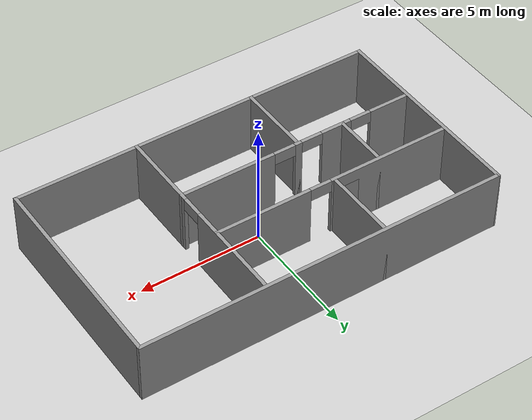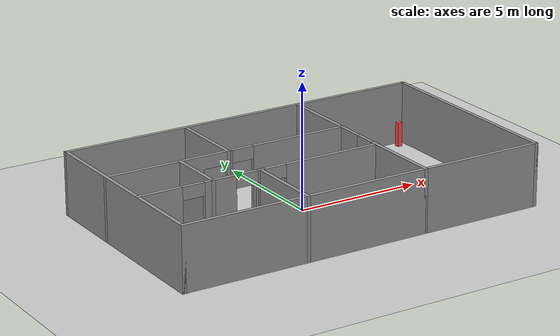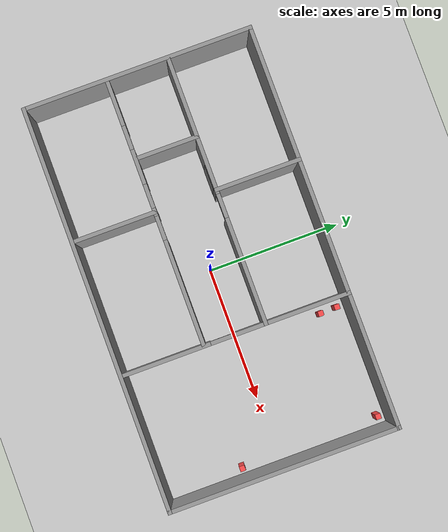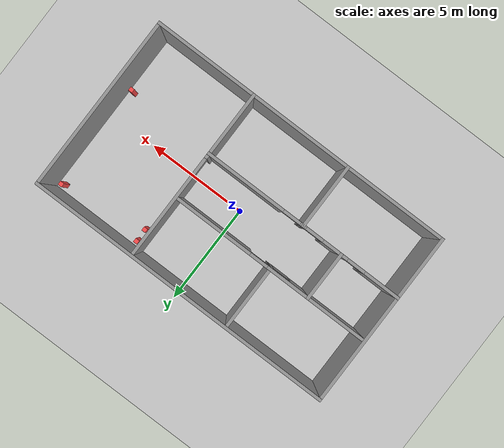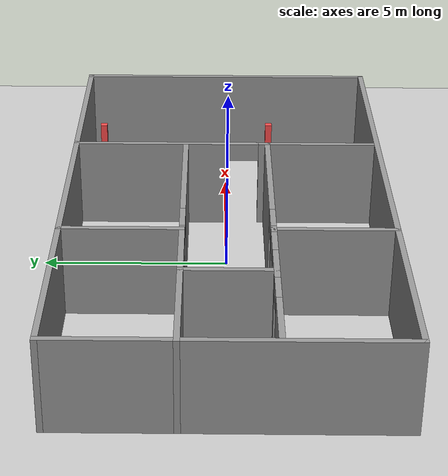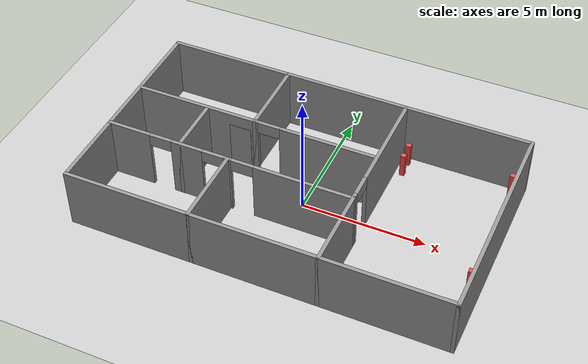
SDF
<sdf version="1.7">
 <world name="default">
  <plugin name="hello" filename="libhello.so"/>
  <light name="sun" type="directional">
   <pose>0 0 10 0 -0 0</pose>
   <diffuse>0.8 0.8 0.8 1</diffuse>
   <specular>0.2 0.2 0.2 1</specular>
   <attenuation>
    <range>1000</range>
    <constant>0.9</constant>
    <linear>0.01</linear>
    <quadratic>0.001</quadratic>
   </attenuation>
   <direction>-0.5 0.1 -0.9</direction>
   <spot><inner_angle>0</inner_angle><outer_angle>0</outer_angle><falloff>0</falloff></spot>
  </light>
  <model name="ground_plane">
   <static>1</static>
   <link name="link">
    <collision name="collision">
     <geometry><plane><normal>0 0 1</normal><size>100 100</size></plane></geometry>
     <surface><friction><ode><mu>100</mu><mu2>50</mu2></ode></friction></surface>
    </collision>
    <visual name="visual">
     <cast_shadows>0</cast_shadows>
     <geometry><plane><normal>0 0 1</normal><size>100 100</size></plane></geometry>
     <material>
      <script><uri>file://media/materials/scripts/gazebo.material</uri><name>Gazebo/Grey</name></script>
     </material>
    </visual>
   </link>
  </model>
  <gravity>0 0 -9.8</gravity>
  <magnetic_field>6e-06 2.3e-05 -4.2e-05</magnetic_field>
  <atmosphere type="adiabatic"/>
  <physics name="default_physics" default="0" type="ode">
   <max_step_size>0.001</max_step_size>
   <real_time_factor>1</real_time_factor>
   <real_time_update_rate>1000</real_time_update_rate>
  </physics>
  <scene><ambient>0.4 0.4 0.4 1</ambient><background>0.7 0.7 0.7 1</background><shadows>1</shadows></scene>
  <spherical_coordinates>
   <surface_model>EARTH_WGS84</surface_model>
   <latitude_deg>0</latitude_deg>
   <longitude_deg>0</longitude_deg>
   <elevation>0</elevation>
   <heading_deg>0</heading_deg>
  </spherical_coordinates>
  <model name="myworld">
   <link name="Door_0">
    <collision name="Door_0_Collision">
     <geometry><box><size>0.9 0.17 2</size></box></geometry>
     <pose>0 0 1 0 -0 0</pose>
    </collision>
    <visual name="Door_0_Visual">
     <pose>0 0 1 0 -0 0</pose>
     <geometry><box><size>0.9 0.17 2</size></box></geometry>
     <material>
      <script><uri>file://media/materials/scripts/gazebo.material</uri><name>Gazebo/Grey</name></script>
     </material>
    </visual>
    <pose>-3.1 1.15 0 0 -0 0</pose>
   </link>
   <link name="Wall_0">
    <collision name="Wall_0_Collision">
     <geometry><box><size>15.15 0.15 2.5</size></box></geometry>
     <pose>0 0 1.25 0 -0 0</pose>
    </collision>
    <visual name="Wall_0_Visual">
     <pose>0 0 1.25 0 -0 0</pose>
     <geometry><box><size>15.15 0.15 2.5</size></box></geometry>
     <material>
      <script><uri>file://media/materials/scripts/gazebo.material</uri><name>Gazebo/Grey</name></script>
      <ambient>1 1 1 1</ambient>
     </material>
     <meta><layer>0</layer></meta>
    </visual>
    <pose>0 4.25 0 0 -0 0</pose>
   </link>
   <link name="Wall_12">
    <pose>-2.5 -1.15 0 0 -0 0</pose>
    <visual name="Wall_12_Visual_0">
     <pose>-4.1625 0 1.25 0 -0 0</pose>
     <geometry><box><size>1.825 0.15 2.5</size></box></geometry>
     <material>
      <script><uri>file://media/materials/scripts/gazebo.material</uri><name>Gazebo/Grey</name></script>
      <ambient>1 1 1 1</ambient>
     </material>
     <meta><layer>0</layer></meta>
    </visual>
    <collision name="Wall_12_Collision_0">
     <geometry><box><size>1.825 0.15 2.5</size></box></geometry>
     <pose>-4.1625 0 1.25 0 -0 0</pose>
    </collision>
    <visual name="Wall_12_Visual_1">
     <pose>-1.7 0 1.25 0 -0 0</pose>
     <geometry><box><size>1.3 0.15 2.5</size></box></geometry>
     <material>
      <script><uri>file://media/materials/scripts/gazebo.material</uri><name>Gazebo/Grey</name></script>
      <ambient>1 1 1 1</ambient>
     </material>
     <meta><layer>0</layer></meta>
    </visual>
    <collision name="Wall_12_Collision_1">
     <geometry><box><size>1.3 0.15 2.5</size></box></geometry>
     <pose>-1.7 0 1.25 0 -0 0</pose>
    </collision>
    <visual name="Wall_12_Visual_2">
     <pose>0 0 1.25 0 -0 0</pose>
     <geometry><box><size>0.3 0.15 2.5</size></box></geometry>
     <material>
      <script><uri>file://media/materials/scripts/gazebo.material</uri><name>Gazebo/Grey</name></script>
      <ambient>1 1 1 1</ambient>
     </material>
     <meta><layer>0</layer></meta>
    </visual>
    <collision name="Wall_12_Collision_2">
     <geometry><box><size>0.3 0.15 2.5</size></box></geometry>
     <pose>0 0 1.25 0 -0 0</pose>
    </collision>
    <visual name="Wall_12_Visual_3">
     <pose>3.0625 0 1.25 0 -0 0</pose>
     <geometry><box><size>4.025 0.15 2.5</size></box></geometry>
     <material>
      <script><uri>file://media/materials/scripts/gazebo.material</uri><name>Gazebo/Grey</name></script>
      <ambient>1 1 1 1</ambient>
     </material>
     <meta><layer>0</layer></meta>
    </visual>
    <collision name="Wall_12_Collision_3">
     <geometry><box><size>4.025 0.15 2.5</size></box></geometry>
     <pose>3.0625 0 1.25 0 -0 0</pose>
    </collision>
    <visual name="Wall_12_Visual_4">
     <pose>-2.8 0 2.25 0 -0 0</pose>
     <geometry><box><size>0.9 0.15 0.5</size></box></geometry>
     <material>
      <script><uri>file://media/materials/scripts/gazebo.material</uri><name>Gazebo/Grey</name></script>
      <ambient>1 1 1 1</ambient>
     </material>
     <meta><layer>0</layer></meta>
    </visual>
    <collision name="Wall_12_Collision_4">
     <geometry><box><size>0.9 0.15 0.5</size></box></geometry>
     <pose>-2.8 0 2.25 0 -0 0</pose>
    </collision>
    <visual name="Wall_12_Visual_5">
     <pose>-0.6 0 2.25 0 -0 0</pose>
     <geometry><box><size>0.9 0.15 0.5</size></box></geometry>
     <material>
      <script><uri>file://media/materials/scripts/gazebo.material</uri><name>Gazebo/Grey</name></script>
      <ambient>1 1 1 1</ambient>
     </material>
     <meta><layer>0</layer></meta>
    </visual>
    <collision name="Wall_12_Collision_5">
     <geometry><box><size>0.9 0.15 0.5</size></box></geometry>
     <pose>-0.6 0 2.25 0 -0 0</pose>
    </collision>
    <visual name="Wall_12_Visual_6">
     <pose>0.6 0 2.25 0 -0 0</pose>
     <geometry><box><size>0.9 0.15 0.5</size></box></geometry>
     <material>
      <script><uri>file://media/materials/scripts/gazebo.material</uri><name>Gazebo/Grey</name></script>
      <ambient>1 1 1 1</ambient>
     </material>
     <meta><layer>0</layer></meta>
    </visual>
    <collision name="Wall_12_Collision_6">
     <geometry><box><size>0.9 0.15 0.5</size></box></geometry>
     <pose>0.6 0 2.25 0 -0 0</pose>
    </collision>
   </link>
   <link name="Wall_17">
    <pose>2.5 0 0 0 0 -1.5708</pose>
    <visual name="Wall_17_Visual_0">
     <pose>-2.1631 0 1.25 0 -0 0</pose>
     <geometry><box><size>4.3238 0.15 2.5</size></box></geometry>
     <material>
      <script><uri>file://media/materials/scripts/gazebo.material</uri><name>Gazebo/Grey</name></script>
      <ambient>1 1 1 1</ambient>
     </material>
     <meta><layer>0</layer></meta>
    </visual>
    <collision name="Wall_17_Collision_0">
     <geometry><box><size>4.3238 0.15 2.5</size></box></geometry>
     <pose>-2.1631 0 1.25 0 -0 0</pose>
    </collision>
    <visual name="Wall_17_Visual_1">
     <pose>2.6119 0 1.25 0 -0 0</pose>
     <geometry><box><size>3.4262 0.15 2.5</size></box></geometry>
     <material>
      <script><uri>file://media/materials/scripts/gazebo.material</uri><name>Gazebo/Grey</name></script>
      <ambient>1 1 1 1</ambient>
     </material>
     <meta><layer>0</layer></meta>
    </visual>
    <collision name="Wall_17_Collision_1">
     <geometry><box><size>3.4262 0.15 2.5</size></box></geometry>
     <pose>2.6119 0 1.25 0 -0 0</pose>
    </collision>
    <visual name="Wall_17_Visual_2">
     <pose>0.448796 0 2.25 0 -0 0</pose>
     <geometry><box><size>0.9 0.15 0.5</size></box></geometry>
     <material>
      <script><uri>file://media/materials/scripts/gazebo.material</uri><name>Gazebo/Grey</name></script>
      <ambient>1 1 1 1</ambient>
     </material>
     <meta><layer>0</layer></meta>
    </visual>
    <collision name="Wall_17_Collision_2">
     <geometry><box><size>0.9 0.15 0.5</size></box></geometry>
     <pose>0.448796 0 2.25 0 -0 0</pose>
    </collision>
   </link>
   <link name="Wall_19">
    <collision name="Wall_19_Collision">
     <geometry><box><size>3.25 0.15 2.5</size></box></geometry>
     <pose>0 0 1.25 0 -0 0</pose>
    </collision>
    <visual name="Wall_19_Visual">
     <pose>0 0 1.25 0 -0 0</pose>
     <geometry><box><size>3.25 0.15 2.5</size></box></geometry>
     <material>
      <script><uri>file://media/materials/scripts/gazebo.material</uri><name>Gazebo/Grey</name></script>
      <ambient>1 1 1 1</ambient>
     </material>
     <meta><layer>0</layer></meta>
    </visual>
    <pose>-2.5 -2.7 0 0 0 -1.5708</pose>
   </link>
   <link name="Wall_2">
    <collision name="Wall_2_Collision">
     <geometry><box><size>8.65 0.15 2.5</size></box></geometry>
     <pose>0 0 1.25 0 -0 0</pose>
    </collision>
    <visual name="Wall_2_Visual">
     <pose>0 0 1.25 0 -0 0</pose>
     <geometry><box><size>8.65 0.15 2.5</size></box></geometry>
     <material>
      <script><uri>file://media/materials/scripts/gazebo.material</uri><name>Gazebo/Grey</name></script>
      <ambient>1 1 1 1</ambient>
     </material>
     <meta><layer>0</layer></meta>
    </visual>
    <pose>-7.5 0 0 0 0 -1.5708</pose>
   </link>
   <link name="Wall_21">
    <collision name="Wall_21_Collision">
     <geometry><box><size>2.45 0.15 2.5</size></box></geometry>
     <pose>0 0 1.25 0 -0 0</pose>
    </collision>
    <visual name="Wall_21_Visual">
     <pose>0 0 1.25 0 -0 0</pose>
     <geometry><box><size>2.45 0.15 2.5</size></box></geometry>
     <material>
      <script><uri>file://media/materials/scripts/gazebo.material</uri><name>Gazebo/Grey</name></script>
      <ambient>1 1 1 1</ambient>
     </material>
     <meta><layer>0</layer></meta>
    </visual>
    <pose>-4.5 0 0 0 0 -1.5708</pose>
   </link>
   <link name="Wall_3">
    <collision name="Wall_3_Collision">
     <geometry><box><size>15.15 0.15 2.5</size></box></geometry>
     <pose>0 0 1.25 0 -0 0</pose>
    </collision>
    <visual name="Wall_3_Visual">
     <pose>0 0 1.25 0 -0 0</pose>
     <geometry><box><size>15.15 0.15 2.5</size></box></geometry>
     <material>
      <script><uri>file://media/materials/scripts/gazebo.material</uri><name>Gazebo/Grey</name></script>
      <ambient>1 1 1 1</ambient>
     </material>
     <meta><layer>0</layer></meta>
    </visual>
    <pose>0 -4.25 0 0 -0 0</pose>
   </link>
   <link name="Wall_4">
    <collision name="Wall_4_Collision">
     <geometry><box><size>8.65 0.15 2.5</size></box></geometry>
     <pose>0 0 1.25 0 -0 0</pose>
    </collision>
    <visual name="Wall_4_Visual">
     <pose>0 0 1.25 0 -0 0</pose>
     <geometry><box><size>8.65 0.15 2.5</size></box></geometry>
     <material>
      <script><uri>file://media/materials/scripts/gazebo.material</uri><name>Gazebo/Grey</name></script>
      <ambient>1 1 1 1</ambient>
     </material>
     <meta><layer>0</layer></meta>
    </visual>
    <pose>7.5 0 0 0 -0 1.5708</pose>
   </link>
   <link name="Wall_6">
    <pose>-2.5 1.15 0 0 -0 0</pose>
    <visual name="Wall_6_Visual_0">
     <pose>-2.46039 0 1.25 0 -0 0</pose>
     <geometry><box><size>5.22922 0.15 2.5</size></box></geometry>
     <material>
      <script><uri>file://media/materials/scripts/gazebo.material</uri><name>Gazebo/Grey</name></script>
      <ambient>1 1 1 1</ambient>
     </material>
     <meta><layer>0</layer></meta>
    </visual>
    <collision name="Wall_6_Collision_0">
     <geometry><box><size>5.22922 0.15 2.5</size></box></geometry>
     <pose>-2.46039 0 1.25 0 -0 0</pose>
    </collision>
    <visual name="Wall_6_Visual_1">
     <pose>3.06461 0 1.25 0 -0 0</pose>
     <geometry><box><size>4.02078 0.15 2.5</size></box></geometry>
     <material>
      <script><uri>file://media/materials/scripts/gazebo.material</uri><name>Gazebo/Grey</name></script>
      <ambient>1 1 1 1</ambient>
     </material>
     <meta><layer>0</layer></meta>
    </visual>
    <collision name="Wall_6_Collision_1">
     <geometry><box><size>4.02078 0.15 2.5</size></box></geometry>
     <pose>3.06461 0 1.25 0 -0 0</pose>
    </collision>
    <visual name="Wall_6_Visual_2">
     <pose>0.604225 0 2.25 0 -0 0</pose>
     <geometry><box><size>0.9 0.15 0.5</size></box></geometry>
     <material>
      <script><uri>file://media/materials/scripts/gazebo.material</uri><name>Gazebo/Grey</name></script>
      <ambient>1 1 1 1</ambient>
     </material>
     <meta><layer>0</layer></meta>
    </visual>
    <collision name="Wall_6_Collision_2">
     <geometry><box><size>0.9 0.15 0.5</size></box></geometry>
     <pose>0.604225 0 2.25 0 -0 0</pose>
    </collision>
   </link>
   <link name="Wall_9">
    <collision name="Wall_9_Collision">
     <geometry><box><size>3.25 0.15 2.5</size></box></geometry>
     <pose>0 0 1.25 0 -0 0</pose>
    </collision>
    <visual name="Wall_9_Visual">
     <pose>0 0 1.25 0 -0 0</pose>
     <geometry><box><size>3.25 0.15 2.5</size></box></geometry>
     <material>
      <script><uri>file://media/materials/scripts/gazebo.material</uri><name>Gazebo/Grey</name></script>
      <ambient>1 1 1 1</ambient>
     </material>
     <meta><layer>0</layer></meta>
    </visual>
    <pose>-2.5 2.7 0 0 0 -1.5708</pose>
   </link>
   <static>1</static>
  </model>
  <model name="unit_box">
   <link name="link">
    <inertial>
     <mass>1</mass>
     <inertia>
      <ixx>0.166667</ixx>
      <ixy>0</ixy>
      <ixz>0</ixz>
      <iyy>0.166667</iyy>
      <iyz>0</iyz>
      <izz>0.166667</izz>
     </inertia>
    </inertial>
    <visual name="visual">
     <geometry><box><size>0.2 0.2 1</size></box></geometry>
     <material>
      <script><name>Gazebo/Grey</name><uri>file://media/materials/scripts/gazebo.material</uri></script>
      <shader type="pixel"><normal_map>__default__</normal_map></shader>
      <ambient>1 0.3 0.3 1</ambient>
      <diffuse>0.7 0.7 0.7 1</diffuse>
      <specular>0.01 0.01 0.01 1</specular>
      <emissive>0 0 0 1</emissive>
     </material>
    </visual>
    <collision name="collision">
     <geometry><box><size>0.2 0.2 1</size></box></geometry>
     <surface>
      <friction>
       <ode><mu>1</mu><mu2>1</mu2><fdir1>0 0 0</fdir1><slip1>0</slip1><slip2>0</slip2></ode>
       <torsional>
        <coefficient>1</coefficient>
        <patch_radius>0</patch_radius>
        <surface_radius>0</surface_radius>
        <use_patch_radius>1</use_patch_radius>
        <ode><slip>0</slip></ode>
       </torsional>
      </friction>
      <bounce><restitution_coefficient>0</restitution_coefficient><threshold>1e+06</threshold></bounce>
      <contact>
       <collide_without_contact>0</collide_without_contact>
       <collide_without_contact_bitmask>1</collide_without_contact_bitmask>
       <collide_bitmask>1</collide_bitmask>
       <ode>
        <soft_cfm>0</soft_cfm>
        <soft_erp>0.2</soft_erp>
        <kp>1e+13</kp>
        <kd>1</kd>
        <max_vel>0.01</max_vel>
        <min_depth>0</min_depth>
       </ode>
       <bullet>
        <split_impulse>1</split_impulse>
        <split_impulse_penetration_threshold>-0.01</split_impulse_penetration_threshold>
        <soft_cfm>0</soft_cfm>
        <soft_erp>0.2</soft_erp>
        <kp>1e+13</kp>
        <kd>1</kd>
       </bullet>
      </contact>
     </surface>
    </collision>
   </link>
   <static>0</static>
   <pose>7.07029 3.86628 0.5 0 -1e-06 -7e-05</pose>
  </model>
  <model name="unit_box_clone">
   <link name="link">
    <inertial>
     <mass>1</mass>
     <inertia>
      <ixx>0.166667</ixx>
      <ixy>0</ixy>
      <ixz>0</ixz>
      <iyy>0.166667</iyy>
      <iyz>0</iyz>
      <izz>0.166667</izz>
     </inertia>
    </inertial>
    <visual name="visual">
     <geometry><box><size>0.2 0.2 1</size></box></geometry>
     <material>
      <script><name>Gazebo/Grey</name><uri>file://media/materials/scripts/gazebo.material</uri></script>
      <shader type="pixel"><normal_map>__default__</normal_map></shader>
      <ambient>1 0.3 0.3 1</ambient>
      <diffuse>0.7 0.7 0.7 1</diffuse>
      <specular>0.01 0.01 0.01 1</specular>
      <emissive>0 0 0 1</emissive>
     </material>
    </visual>
    <collision name="collision">
     <geometry><box><size>0.2 0.2 1</size></box></geometry>
     <surface>
      <friction>
       <ode><mu>1</mu><mu2>1</mu2><fdir1>0 0 0</fdir1><slip1>0</slip1><slip2>0</slip2></ode>
       <torsional>
        <coefficient>1</coefficient>
        <patch_radius>0</patch_radius>
        <surface_radius>0</surface_radius>
        <use_patch_radius>1</use_patch_radius>
        <ode><slip>0</slip></ode>
       </torsional>
      </friction>
      <bounce><restitution_coefficient>0</restitution_coefficient><threshold>1e+06</threshold></bounce>
      <contact>
       <collide_without_contact>0</collide_without_contact>
       <collide_without_contact_bitmask>1</collide_without_contact_bitmask>
       <collide_bitmask>1</collide_bitmask>
       <ode>
        <soft_cfm>0</soft_cfm>
        <soft_erp>0.2</soft_erp>
        <kp>1e+13</kp>
        <kd>1</kd>
        <max_vel>0.01</max_vel>
        <min_depth>0</min_depth>
       </ode>
       <bullet>
        <split_impulse>1</split_impulse>
        <split_impulse_penetration_threshold>-0.01</split_impulse_penetration_threshold>
        <soft_cfm>0</soft_cfm>
        <soft_erp>0.2</soft_erp>
        <kp>1e+13</kp>
        <kd>1</kd>
       </bullet>
      </contact>
     </surface>
    </collision>
   </link>
   <static>0</static>
   <pose>2.85406 3.85127 0.5 0 -2e-06 -7.4e-05</pose>
  </model>
  <model name="unit_box_clone_0">
   <link name="link">
    <inertial>
     <mass>1</mass>
     <inertia>
      <ixx>0.166667</ixx>
      <ixy>0</ixy>
      <ixz>0</ixz>
      <iyy>0.166667</iyy>
      <iyz>0</iyz>
      <izz>0.166667</izz>
     </inertia>
    </inertial>
    <visual name="visual">
     <geometry><box><size>0.2 0.2 1</size></box></geometry>
     <material>
      <script><name>Gazebo/Grey</name><uri>file://media/materials/scripts/gazebo.material</uri></script>
      <shader type="pixel"><normal_map>__default__</normal_map></shader>
      <ambient>1 0.3 0.3 1</ambient>
      <diffuse>0.7 0.7 0.7 1</diffuse>
      <specular>0.01 0.01 0.01 1</specular>
      <emissive>0 0 0 1</emissive>
     </material>
    </visual>
    <collision name="collision">
     <geometry><box><size>0.2 0.2 1</size></box></geometry>
     <surface>
      <friction>
       <ode><mu>1</mu><mu2>1</mu2><fdir1>0 0 0</fdir1><slip1>0</slip1><slip2>0</slip2></ode>
       <torsional>
        <coefficient>1</coefficient>
        <patch_radius>0</patch_radius>
        <surface_radius>0</surface_radius>
        <use_patch_radius>1</use_patch_radius>
        <ode><slip>0</slip></ode>
       </torsional>
      </friction>
      <bounce><restitution_coefficient>0</restitution_coefficient><threshold>1e+06</threshold></bounce>
      <contact>
       <collide_without_contact>0</collide_without_contact>
       <collide_without_contact_bitmask>1</collide_without_contact_bitmask>
       <collide_bitmask>1</collide_bitmask>
       <ode>
        <soft_cfm>0</soft_cfm>
        <soft_erp>0.2</soft_erp>
        <kp>1e+13</kp>
        <kd>1</kd>
        <max_vel>0.01</max_vel>
        <min_depth>0</min_depth>
       </ode>
       <bullet>
        <split_impulse>1</split_impulse>
        <split_impulse_penetration_threshold>-0.01</split_impulse_penetration_threshold>
        <soft_cfm>0</soft_cfm>
        <soft_erp>0.2</soft_erp>
        <kp>1e+13</kp>
        <kd>1</kd>
       </bullet>
      </contact>
     </surface>
    </collision>
   </link>
   <static>0</static>
   <pose>7.1326 -1.37621 0.5 2e-06 1e-06 3.9e-05</pose>
  </model>
  <model name="unit_box_clone_2">
   <link name="link">
    <inertial>
     <mass>1</mass>
     <inertia>
      <ixx>0.166667</ixx>
      <ixy>0</ixy>
      <ixz>0</ixz>
      <iyy>0.166667</iyy>
      <iyz>0</iyz>
      <izz>0.166667</izz>
     </inertia>
    </inertial>
    <visual name="visual">
     <geometry><box><size>0.2 0.2 1</size></box></geometry>
     <material>
      <script><name>Gazebo/Grey</name><uri>file://media/materials/scripts/gazebo.material</uri></script>
      <shader type="pixel"><normal_map>__default__</normal_map></shader>
      <ambient>1 0.3 0.3 1</ambient>
      <diffuse>0.7 0.7 0.7 1</diffuse>
      <specular>0.01 0.01 0.01 1</specular>
      <emissive>0 0 0 1</emissive>
     </material>
    </visual>
    <collision name="collision">
     <geometry><box><size>0.2 0.2 1</size></box></geometry>
     <surface>
      <friction>
       <ode><mu>1</mu><mu2>1</mu2><fdir1>0 0 0</fdir1><slip1>0</slip1><slip2>0</slip2></ode>
       <torsional>
        <coefficient>1</coefficient>
        <patch_radius>0</patch_radius>
        <surface_radius>0</surface_radius>
        <use_patch_radius>1</use_patch_radius>
        <ode><slip>0</slip></ode>
       </torsional>
      </friction>
      <bounce><restitution_coefficient>0</restitution_coefficient><threshold>1e+06</threshold></bounce>
      <contact>
       <collide_without_contact>0</collide_without_contact>
       <collide_without_contact_bitmask>1</collide_without_contact_bitmask>
       <collide_bitmask>1</collide_bitmask>
       <ode>
        <soft_cfm>0</soft_cfm>
        <soft_erp>0.2</soft_erp>
        <kp>1e+13</kp>
        <kd>1</kd>
        <max_vel>0.01</max_vel>
        <min_depth>0</min_depth>
       </ode>
       <bullet>
        <split_impulse>1</split_impulse>
        <split_impulse_penetration_threshold>-0.01</split_impulse_penetration_threshold>
        <soft_cfm>0</soft_cfm>
        <soft_erp>0.2</soft_erp>
        <kp>1e+13</kp>
        <kd>1</kd>
       </bullet>
      </contact>
     </surface>
    </collision>
   </link>
   <static>0</static>
   <pose>2.8729 3.21812 0.5 0 -2e-06 -7.4e-05</pose>
  </model>
 </world>
</sdf>
